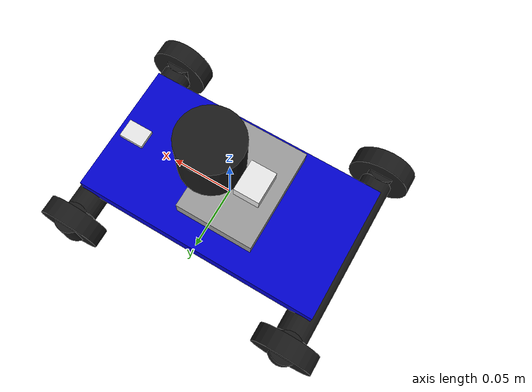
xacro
<?xml version="1.0"?>
<robot name="smartcar" xmlns:xacro="http://www.ros.org/wiki/xacro">
  <xacro:include filename="$(find smartcar_description)/urdf/xacro/smartcar_body.xacro"/>
  <xacro:include filename="$(find smartcar_description)/urdf/xacro/smartcar_sim.xacro"/>
  <xacro:smartcar_body/>
  <xacro:smartcar_sim/>
</robot>

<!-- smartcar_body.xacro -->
<robot xmlns:xacro="http://www.ros.org/wiki/xacro">

  <!-- 颜色材质 -->
  <material name="blue">
    <color rgba="0.0 0.0 0.8 1.0"/>
  </material>
  <material name="black">
    <color rgba="0.1 0.1 0.1 1.0"/>
  </material>
  <material name="gray">
    <color rgba="0.6 0.6 0.6 1.0"/>
  </material>
  <material name="white">
    <color rgba="0.9 0.9 0.9 1.0"/>
  </material>

  <!-- 圆柱体惯性矩阵宏 -->
  <xacro:macro name="cylinder_inertial_matrix" params="m r h">
    <inertial>
      <mass value="${m}" />
      <inertia
        ixx="${m*(3*r*r+h*h)/12}" ixy="0" ixz="0"
        iyy="${m*(3*r*r+h*h)/12}" iyz="0"
        izz="${m*r*r/2}" />
    </inertial>
  </xacro:macro>

  <!-- 车轮宏（含外观、碰撞与惯性） -->
  <xacro:macro name="wheel" params="prefix y_ref joint_name">
    <link name="${prefix}_wheel">
      <visual>
        <origin rpy="1.57079632679 0 0" xyz="0 0 0"/>
        <geometry>
          <cylinder radius="0.025" length="0.015"/>
        </geometry>
        <material name="black"/>
      </visual>
      <collision>
        <origin rpy="1.57079632679 0 0" xyz="0 0 0"/>
        <geometry>
          <cylinder radius="0.025" length="0.015"/>
        </geometry>
      </collision>
      <inertial>
        <mass value="0.1"/>
        <inertia ixx="0.000041" ixy="0" ixz="0"
                 iyy="0.000031" iyz="0"
                 izz="0.000031"/>
      </inertial>
    </link>

    <joint name="${joint_name}" type="continuous">
      <parent link="${prefix}_bridge"/>
      <child link="${prefix}_wheel"/>
      <origin xyz="0 0 0" rpy="0 0 0"/>
      <axis xyz="0 1 0"/>
    </joint>
  </xacro:macro>

  <xacro:macro name="smartcar_body">

    <!-- 底盘 -->
    <link name="base_link">
      <visual>
        <origin xyz="0 0 0" rpy="0 0 0"/>
        <geometry>
          <box size="0.2 0.11 0.015"/>
        </geometry>
        <material name="blue"/>
      </visual>
      <collision>
        <origin xyz="0 0 0" rpy="0 0 0"/>
        <geometry>
          <box size="0.2 0.11 0.015"/>
        </geometry>
      </collision>
      <inertial>
        <mass value="0.5"/>
        <inertia ixx="0.00065" ixy="0" ixz="0"
                 iyy="0.00093" iyz="0"
                 izz="0.00153"/>
      </inertial>
    </link>

    <!-- 前桥 -->
    <link name="front_bridge">
      <visual>
        <origin rpy="1.57079632679 0 0" xyz="0 0 0"/>
        <geometry>
          <cylinder radius="0.0125" length="0.14"/>
        </geometry>
        <material name="black"/>
      </visual>
      <collision>
        <origin rpy="1.57079632679 0 0" xyz="0 0 0"/>
        <geometry>
          <cylinder radius="0.0125" length="0.14"/>
        </geometry>
      </collision>
      <xacro:cylinder_inertial_matrix m="0.1" r="0.0125" h="0.14"/>
    </link>

    <joint name="base_to_front_bridge" type="fixed">
      <parent link="base_link"/>
      <child link="front_bridge"/>
      <origin xyz="0.09425 0 -0.015" rpy="0 0 0"/>
    </joint>

    <!-- 后桥 -->
    <link name="back_bridge">
      <visual>
        <origin rpy="1.57079632679 0 0" xyz="0 0 0"/>
        <geometry>
          <cylinder radius="0.0125" length="0.14"/>
        </geometry>
        <material name="black"/>
      </visual>
      <collision>
        <origin rpy="1.57079632679 0 0" xyz="0 0 0"/>
        <geometry>
          <cylinder radius="0.0125" length="0.14"/>
        </geometry>
      </collision>
      <xacro:cylinder_inertial_matrix m="0.1" r="0.0125" h="0.14"/>
    </link>

    <joint name="base_to_back_bridge" type="fixed">
      <parent link="base_link"/>
      <child link="back_bridge"/>
      <origin xyz="-0.09425 0 -0.015" rpy="0 0 0"/>
    </joint>

    <!-- 左前转向桥（revolute，主动转向） -->
    <link name="left_front_bridge">
      <visual>
        <origin rpy="0 0 0" xyz="0 0 0"/>
        <geometry>
          <cylinder radius="0.0125" length="0.025"/>
        </geometry>
        <material name="black"/>
      </visual>
      <collision>
        <origin rpy="0 0 0" xyz="0 0 0"/>
        <geometry>
          <cylinder radius="0.0125" length="0.025"/>
        </geometry>
      </collision>
      <xacro:cylinder_inertial_matrix m="0.1" r="0.0125" h="0.025"/>
    </link>

    <joint name="left_bridge_to_bridge" type="revolute">
      <parent link="front_bridge"/>
      <child link="left_front_bridge"/>
      <origin xyz="0 0.08 0" rpy="0 0 0"/>
      <axis xyz="0 0 1"/>
      <limit lower="-0.4" upper="0.4" effort="10" velocity="1"/>
    </joint>

    <!-- 右前转向桥（revolute，主动转向） -->
    <link name="right_front_bridge">
      <visual>
        <origin rpy="0 0 0" xyz="0 0 0"/>
        <geometry>
          <cylinder radius="0.0125" length="0.025"/>
        </geometry>
        <material name="black"/>
      </visual>
      <collision>
        <origin rpy="0 0 0" xyz="0 0 0"/>
        <geometry>
          <cylinder radius="0.0125" length="0.025"/>
        </geometry>
      </collision>
      <xacro:cylinder_inertial_matrix m="0.1" r="0.0125" h="0.025"/>
    </link>

    <joint name="right_bridge_to_bridge" type="revolute">
      <parent link="front_bridge"/>
      <child link="right_front_bridge"/>
      <origin xyz="0 -0.08 0" rpy="0 0 0"/>
      <axis xyz="0 0 1"/>
      <limit lower="-0.4" upper="0.4" effort="10" velocity="1"/>
    </joint>

    <!-- 左后桥座（固定） -->
    <link name="left_back_bridge">
      <visual>
        <origin rpy="0 0 0" xyz="0 0 0"/>
        <geometry>
          <cylinder radius="0.0125" length="0.025"/>
        </geometry>
        <material name="black"/>
      </visual>
      <collision>
        <origin rpy="0 0 0" xyz="0 0 0"/>
        <geometry>
          <cylinder radius="0.0125" length="0.025"/>
        </geometry>
      </collision>
      <xacro:cylinder_inertial_matrix m="0.1" r="0.0125" h="0.025"/>
    </link>

    <joint name="back_to_left_back_bridge" type="fixed">
      <parent link="back_bridge"/>
      <child link="left_back_bridge"/>
      <origin xyz="0 0.08 0" rpy="0 0 0"/>
    </joint>

    <!-- 右后桥座（固定） -->
    <link name="right_back_bridge">
      <visual>
        <origin rpy="0 0 0" xyz="0 0 0"/>
        <geometry>
          <cylinder radius="0.0125" length="0.025"/>
        </geometry>
        <material name="black"/>
      </visual>
      <collision>
        <origin rpy="0 0 0" xyz="0 0 0"/>
        <geometry>
          <cylinder radius="0.0125" length="0.025"/>
        </geometry>
      </collision>
      <xacro:cylinder_inertial_matrix m="0.1" r="0.0125" h="0.025"/>
    </link>

    <joint name="back_to_right_back_bridge" type="fixed">
      <parent link="back_bridge"/>
      <child link="right_back_bridge"/>
      <origin xyz="0 -0.08 0" rpy="0 0 0"/>
    </joint>

    <!-- 四个车轮 -->
    <xacro:wheel prefix="left_front" y_ref="0.08" joint_name="left_front_wheel_to_bridge"/>
    <xacro:wheel prefix="right_front" y_ref="-0.08" joint_name="right_front_wheel_to_bridge"/>
    <xacro:wheel prefix="left_back" y_ref="0.08" joint_name="left_back_wheel_joint"/>
    <xacro:wheel prefix="right_back" y_ref="-0.08" joint_name="right_back_wheel_joint"/>

    <!-- 上层支架立柱 -->
    <link name="standoff">
      <visual>
        <origin rpy="0 0 0" xyz="0 0 0"/>
        <geometry>
          <cylinder radius="0.005" length="0.02"/>
        </geometry>
        <material name="black"/>
      </visual>
      <collision>
        <origin rpy="0 0 0" xyz="0 0 0"/>
        <geometry>
          <cylinder radius="0.005" length="0.02"/>
        </geometry>
      </collision>
      <xacro:cylinder_inertial_matrix m="0.02" r="0.005" h="0.02"/>
    </link>

    <joint name="base_to_standoff" type="fixed">
      <parent link="base_link"/>
      <child link="standoff"/>
      <origin xyz="0 0 0.0175" rpy="0 0 0"/>
    </joint>

    <!-- 上层安装板（Raspberry Pi 安装板） -->
    <link name="upper_block">
      <visual>
        <origin rpy="0 0 0" xyz="0 0 0"/>
        <geometry>
          <box size="0.06 0.08 0.012"/>
        </geometry>
        <material name="gray"/>
      </visual>
      <collision>
        <origin rpy="0 0 0" xyz="0 0 0"/>
        <geometry>
          <box size="0.06 0.08 0.012"/>
        </geometry>
      </collision>
      <inertial>
        <mass value="0.1"/>
        <inertia ixx="0.00006" ixy="0" ixz="0"
                 iyy="0.00005" iyz="0"
                 izz="0.00008"/>
      </inertial>
    </link>

    <joint name="Raspberry_Pi_joint" type="fixed">
      <parent link="standoff"/>
      <child link="upper_block"/>
      <origin xyz="-0.01 0 0.016" rpy="0 0 0"/>
    </joint>

    <!-- 激光雷达（无 collision，避免自扫） -->
    <link name="laser_link">
      <visual>
        <origin rpy="0 0 0" xyz="0 0 0"/>
        <geometry>
          <cylinder radius="0.025" length="0.04"/>
        </geometry>
        <material name="black"/>
      </visual>
      <xacro:cylinder_inertial_matrix m="0.1" r="0.025" h="0.04"/>
    </link>

    <joint name="upper_to_laser" type="fixed">
      <parent link="upper_block"/>
      <child link="laser_link"/>
      <origin xyz="0.025 0 0.026" rpy="0 0 0"/>
    </joint>

    <!-- 摄像头（车头） -->
    <link name="camera_link">
      <visual>
        <origin rpy="0 0 0" xyz="0 0 0"/>
        <geometry>
          <box size="0.02 0.015 0.012"/>
        </geometry>
        <material name="white"/>
      </visual>
      <collision>
        <origin rpy="0 0 0" xyz="0 0 0"/>
        <geometry>
          <box size="0.02 0.015 0.012"/>
        </geometry>
      </collision>
      <inertial>
        <mass value="0.02"/>
        <inertia ixx="0.000001" ixy="0" ixz="0"
                 iyy="0.000001" iyz="0"
                 izz="0.000001"/>
      </inertial>
    </link>

    <joint name="upper_to_camera" type="fixed">
      <parent link="upper_block"/>
      <child link="camera_link"/>
      <origin xyz="0.095 0 -0.0285" rpy="0 0 0"/>
    </joint>

    <!-- IMU（上层，无 collision） -->
    <link name="imu_link">
      <visual>
        <origin rpy="0 0 0" xyz="0 0 0"/>
        <geometry>
          <box size="0.02 0.025 0.01"/>
        </geometry>
        <material name="white"/>
      </visual>
      <inertial>
        <mass value="0.01"/>
        <inertia ixx="0.000001" ixy="0" ixz="0"
                 iyy="0.000001" iyz="0"
                 izz="0.000001"/>
      </inertial>
    </link>

    <joint name="upper_to_imu" type="fixed">
      <parent link="upper_block"/>
      <child link="imu_link"/>
      <origin xyz="-0.01 0 0.011" rpy="0 0 0"/>
    </joint>

  </xacro:macro>

</robot>
